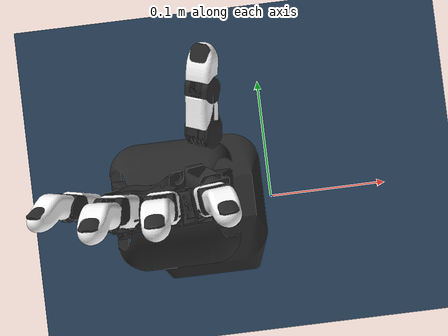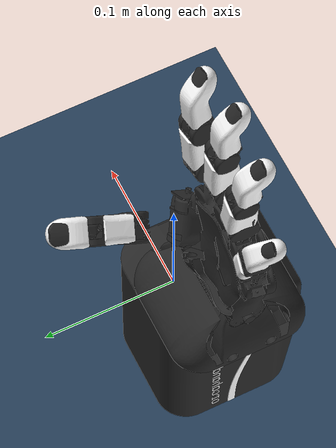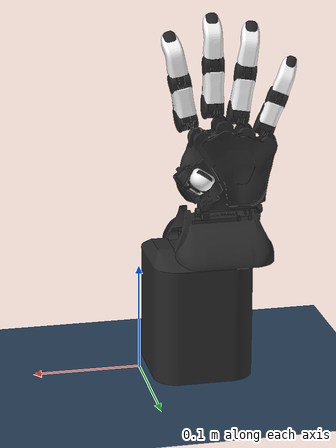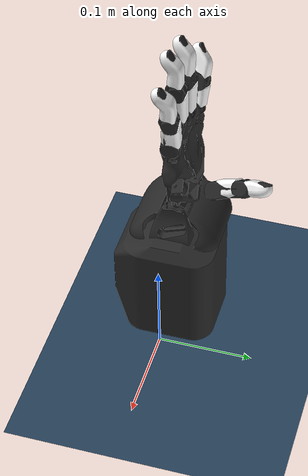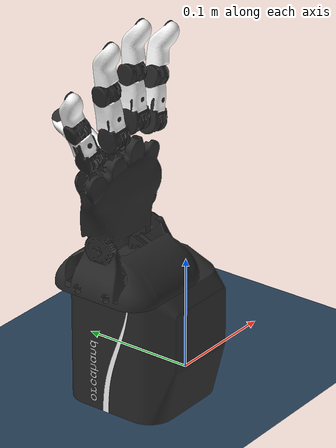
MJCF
<?xml version="1.0" ?>
<mujoco model="ORCA hand left scene">

  <include file="models/assets/scene.xml"/>

  <include file="models/assets/options.xml"/>

  <include file="models/mjcf/orcahand_left.mjcf"/>

  <worldbody>
    <body name="left_mount" pos="-0.06363 0.00332 0.058" euler="1.5708 0 0">
      <include file="models/mjcf/orcahand_left_body.xml"/>
    </body>
  </worldbody>

</mujoco>

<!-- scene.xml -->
<mujoco model="orcahand_v2_scene">

  <!-- Camera placement -->
  <statistic extent="0.3" center="0 0 0.15"/>
  <visual>
    <rgba haze="0.15 0.25 0.35 1"/>
    <quality shadowsize="8192"/>
    <global azimuth="220" elevation="-30"/>
  </visual>

  <!-- Background -->
  <asset>
    <texture type="skybox" builtin="gradient" rgb1="0.3 0.5 0.7" rgb2="0 0 0" width="512" height="3072"/>
    <texture type="2d" name="groundplane" builtin="checker" mark="edge" rgb1="0.2 0.3 0.4" rgb2="0.1 0.2 0.3"
      markrgb="0.8 0.8 0.8" width="300" height="300"/>
    <material name="groundplane" texture="groundplane" texuniform="true" texrepeat="5 5" reflectance="0.2"/>
  </asset>

  <worldbody>
    <!-- Lighting and floor -->
    <light pos="0 0.5 1" dir="0 -0.3 -1" diffuse="0.8 0.8 0.8" specular="0.2 0.2 0.2"/>
    <light pos="0.3 0.5 1.5" dir="0 -0.3 -1" directional="true" diffuse="0.6 0.6 0.6" specular="0.1 0.1 0.1"/>
    <geom name="floor" pos="0 0 0" size="0 0 0.05" type="plane" material="groundplane"/>

  </worldbody>

</mujoco>

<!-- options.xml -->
<mujoco model="orcahand_v2_options">

  <!-- eulerseq "XYZ" corresponds to URDF "rpy" -->
  <compiler angle="radian" eulerseq="XYZ"/>

  <default>
    <mesh scale="0.001 0.001 0.001"/>
    <!-- Visual classes -->
    <default class="visual_base">
      <geom conaffinity="0" condim="1" contype="0" group="2" type="mesh"/>
      <default class="skin">
        <geom material="white"/>
      </default>
      <default class="bone">
        <geom material="black"/>
      </default>
    </default>
    <!-- Collision class -->
    <default class="collision">
      <geom conaffinity="1" condim="3" contype="1" group="1" material="invisible" type="mesh"/>
    </default>
    <!-- Joints -->
    <joint armature="0.001" damping="0.1" frictionloss="0.001" limited="true" margin="0.01" type="hinge"/>
    <position ctrllimited="true" forcelimited="true" forcerange="-1 1" kp="2.0"/>
  </default>

  <asset>
    <!-- Materials -->
    <material name="white" rgba="1 1 1 1" shininess="0.02" specular="0.005"/>
    <material name="black" rgba="0.1569 0.1569 0.1569 1" shininess="0.5" specular="0.1"/>
    <material name="invisible" rgba="1 1 1 0" shininess="0" specular="0"/>
  </asset>

</mujoco>

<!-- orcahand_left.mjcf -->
<mujoco model="orcahand_left">
	<default>
		<geom type="mesh" friction="1 0.005 0.001" condim="3" margin="0.0005" contype="1" conaffinity="1" />
		<joint type="hinge" limited="true" damping="0.1" armature="0.001" margin="0.01" frictionloss="0.001" />
		<position ctrllimited="true" forcelimited="true" forcerange="-1 1" kp="2.0" />
		<mesh scale="0.001 0.001 0.001" />
	</default>
	<asset>
		<mesh name="left_L-T-AP" file="models/assets/left/L-T-AP.stl" />
		<mesh name="left_P-AP" file="models/assets/left/P-AP.stl" />
		<mesh name="left_ForeArmStructure-Model" file="models/assets/left/ForeArmStructure-Model.stl" />
		<mesh name="left_TopTower-Model" file="models/assets/left/TopTower-Model.stl" />
		<mesh name="left_I-AP-L" file="models/assets/left/I-AP-L.stl" />
		<mesh name="left_T-TP-L" file="models/assets/left/T-TP-L.stl" />
		<mesh name="left_L-Carpals" file="models/assets/left/L-Carpals.stl" />
		<mesh name="left_L-Carpals_Skin" file="models/assets/left/L-Carpals_Skin.stl" />
		<mesh name="left_M-AP" file="models/assets/left/M-AP.stl" />
		<mesh name="left_ForeArmStructure-Model_Logo" file="models/assets/left/ForeArmStructure-Model_Logo.stl" />
		<mesh name="left_T-PP_Skin" file="models/assets/left/T-PP_Skin.stl" />
		<mesh name="left_P-IP_IP" file="models/assets/left/P-IP_IP.stl" />
		<mesh name="left_M-PP_PP" file="models/assets/left/M-PP_PP.stl" />
		<mesh name="left_M-PP_Skin" file="models/assets/left/M-PP_Skin.stl" />
		<mesh name="left_T-DP_Skin" file="models/assets/left/T-DP_Skin.stl" />
		<mesh name="left_P-FingerTipAssembly_P-DP-Skin" file="models/assets/left/P-FingerTipAssembly_P-DP-Skin.stl" />
		<mesh name="left_T-PP_PP" file="models/assets/left/T-PP_PP.stl" />
		<mesh name="left_I-IP_IP" file="models/assets/left/I-IP_IP.stl" />
		<mesh name="left_T-DP_T-DP" file="models/assets/left/T-DP_T-DP.stl" />
		<mesh name="left_P-PP_Skin" file="models/assets/left/P-PP_Skin.stl" />
		<mesh name="left_I-PP_PP" file="models/assets/left/I-PP_PP.stl" />
		<mesh name="left_I-FingerTipAssembly_I-DP-Skin" file="models/assets/left/I-FingerTipAssembly_I-DP-Skin.stl" />
		<mesh name="left_P-PP_PP" file="models/assets/left/P-PP_PP.stl" />
		<mesh name="left_I-PP_Skin" file="models/assets/left/I-PP_Skin.stl" />
		<mesh name="left_M-IP_IP" file="models/assets/left/M-IP_IP.stl" />
		<mesh name="left_M-FingerTipAssembly_M-DP-Skin" file="models/assets/left/M-FingerTipAssembly_M-DP-Skin.stl" />
		<mesh name="left_forearm_collision" file="models/assets/left/forearm_collision.stl" />
		<mesh name="left_tower_collision_0" file="models/assets/left/tower_collision_0.stl" />
		<mesh name="left_tower_collision_1" file="models/assets/left/tower_collision_1.stl" />
		<mesh name="left_tower_collision_2" file="models/assets/left/tower_collision_2.stl" />
		<mesh name="left_tower_collision_3" file="models/assets/left/tower_collision_3.stl" />
		<mesh name="left_tower_collision_4" file="models/assets/left/tower_collision_4.stl" />
		<mesh name="left_tower_collision_5" file="models/assets/left/tower_collision_5.stl" />
		<mesh name="left_carpals_collision_0" file="models/assets/left/carpals_collision_0.stl" />
		<mesh name="left_carpals_collision_1" file="models/assets/left/carpals_collision_1.stl" />
		<mesh name="left_carpals_collision_2" file="models/assets/left/carpals_collision_2.stl" />
		<mesh name="left_carpals_collision_3" file="models/assets/left/carpals_collision_3.stl" />
		<mesh name="left_carpals_collision_4" file="models/assets/left/carpals_collision_4.stl" />
		<mesh name="left_carpals_collision_5" file="models/assets/left/carpals_collision_5.stl" />
		<mesh name="left_carpals_collision_6" file="models/assets/left/carpals_collision_6.stl" />
		<mesh name="left_carpals_collision_7" file="models/assets/left/carpals_collision_7.stl" />
		<mesh name="left_pinky_ap_collision" file="models/assets/left/pinky_ap_collision.stl" />
		<mesh name="left_pinky_pp_collision" file="models/assets/left/pinky_pp_collision.stl" />
		<mesh name="left_pinky_dp_collision_0" file="models/assets/left/pinky_dp_collision_0.stl" />
		<mesh name="left_pinky_dp_collision_1" file="models/assets/left/pinky_dp_collision_1.stl" />
		<mesh name="left_pinky_dp_collision_2" file="models/assets/left/pinky_dp_collision_2.stl" />
		<mesh name="left_pinky_dp_collision_3" file="models/assets/left/pinky_dp_collision_3.stl" />
		<mesh name="left_ring_ap_collision" file="models/assets/left/ring_ap_collision.stl" />
		<mesh name="left_ring_pp_collision" file="models/assets/left/ring_pp_collision.stl" />
		<mesh name="left_ring_dp_collision_0" file="models/assets/left/ring_dp_collision_0.stl" />
		<mesh name="left_ring_dp_collision_1" file="models/assets/left/ring_dp_collision_1.stl" />
		<mesh name="left_ring_dp_collision_2" file="models/assets/left/ring_dp_collision_2.stl" />
		<mesh name="left_ring_dp_collision_3" file="models/assets/left/ring_dp_collision_3.stl" />
		<mesh name="left_middle_ap_collision" file="models/assets/left/middle_ap_collision.stl" />
		<mesh name="left_middle_pp_collision" file="models/assets/left/middle_pp_collision.stl" />
		<mesh name="left_middle_dp_collision_0" file="models/assets/left/middle_dp_collision_0.stl" />
		<mesh name="left_middle_dp_collision_1" file="models/assets/left/middle_dp_collision_1.stl" />
		<mesh name="left_middle_dp_collision_2" file="models/assets/left/middle_dp_collision_2.stl" />
		<mesh name="left_middle_dp_collision_3" file="models/assets/left/middle_dp_collision_3.stl" />
		<mesh name="left_index_ap_collision" file="models/assets/left/index_ap_collision.stl" />
		<mesh name="left_index_pp_collision" file="models/assets/left/index_pp_collision.stl" />
		<mesh name="left_index_dp_collision_0" file="models/assets/left/index_dp_collision_0.stl" />
		<mesh name="left_index_dp_collision_1" file="models/assets/left/index_dp_collision_1.stl" />
		<mesh name="left_index_dp_collision_2" file="models/assets/left/index_dp_collision_2.stl" />
		<mesh name="left_index_dp_collision_3" file="models/assets/left/index_dp_collision_3.stl" />
		<mesh name="left_thumb_tp_collision" file="models/assets/left/thumb_tp_collision.stl" />
		<mesh name="left_thumb_ap_collision" file="models/assets/left/thumb_ap_collision.stl" />
		<mesh name="left_thumb_pp_collision" file="models/assets/left/thumb_pp_collision.stl" />
		<mesh name="left_thumb_dp_collision_0" file="models/assets/left/thumb_dp_collision_0.stl" />
		<mesh name="left_thumb_dp_collision_1" file="models/assets/left/thumb_dp_collision_1.stl" />
		<mesh name="left_thumb_dp_collision_2" file="models/assets/left/thumb_dp_collision_2.stl" />
		<mesh name="left_thumb_dp_collision_3" file="models/assets/left/thumb_dp_collision_3.stl" />
	</asset>
	<actuator>
		<position name="left_wrist_actuator" joint="left_wrist" ctrlrange="-1.1344640137963142 0.6108652381980153" />
		<position name="left_pinky_abd_actuator" joint="left_pinky_abd" ctrlrange="-0.5235987755982988 0.5235987755982988" />
		<position name="left_pinky_mcp_actuator" joint="left_pinky_mcp" ctrlrange="-0.4363323129985824 1.7453292519943295" />
		<position name="left_pinky_pip_actuator" joint="left_pinky_pip" ctrlrange="-0.2617993877991494 1.8675022996339325" />
		<position name="left_ring_abd_actuator" joint="left_ring_abd" ctrlrange="-0.47123889803846897 0.47123889803846897" />
		<position name="left_ring_mcp_actuator" joint="left_ring_mcp" ctrlrange="-0.4363323129985824 1.7453292519943295" />
		<position name="left_ring_pip_actuator" joint="left_ring_pip" ctrlrange="-0.2617993877991494 1.8675022996339325" />
		<position name="left_middle_abd_actuator" joint="left_middle_abd" ctrlrange="-0.47123889803846897 0.47123889803846897" />
		<position name="left_middle_mcp_actuator" joint="left_middle_mcp" ctrlrange="-0.4363323129985824 1.7453292519943295" />
		<position name="left_middle_pip_actuator" joint="left_middle_pip" ctrlrange="-0.2617993877991494 1.8675022996339325" />
		<position name="left_index_abd_actuator" joint="left_index_abd" ctrlrange="-0.4363323129985824 0.5235987755982988" />
		<position name="left_index_mcp_actuator" joint="left_index_mcp" ctrlrange="-0.4363323129985824 1.7453292519943295" />
		<position name="left_index_pip_actuator" joint="left_index_pip" ctrlrange="-0.2617993877991494 1.8675022996339325" />
		<position name="left_thumb_cmc_actuator" joint="left_thumb_cmc" ctrlrange="-0.7853981633974483 0.5759586531581288" />
		<position name="left_thumb_abd_actuator" joint="left_thumb_abd" ctrlrange="-0.3141592653589793 0.9599310885968813" />
		<position name="left_thumb_mcp_actuator" joint="left_thumb_mcp" ctrlrange="-0.4363323129985824 1.7453292519943295" />
		<position name="left_thumb_dip_actuator" joint="left_thumb_dip" ctrlrange="-0.2617993877991494 1.8675022996339325" />
	</actuator>
	<contact>
		<exclude body1="left_tower" body2="left_carpals" />
		<exclude body1="left_carpals" body2="left_index_pp" />
		<exclude body1="left_carpals" body2="left_middle_pp" />
		<exclude body1="left_carpals" body2="left_ring_pp" />
		<exclude body1="left_carpals" body2="left_pinky_pp" />
		<exclude body1="left_carpals" body2="left_thumb_ap" />
	</contact>
</mujoco>

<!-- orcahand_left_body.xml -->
<mujoco model="orcahand_left_body">
	<body name="left_tower" quat="1.0 0.0 0.0 0.0">
		<body name="left_ForeArmStructure-Model_e18f2368" pos="0.0 0.0 0.0" quat="1.0 0.0 0.0 0.0">
			<body name="left_TopTower-Model_4a80d30e" pos="-0.010000000000000018 0.05230000000000584 -2.0816681711721685e-17" quat="-0.4999999999999985 0.4999999999999986 -0.5 -0.49999999999999994">
				<body name="left_L-Carpals_719fff8c" pos="-0.0018770780631086439 0.005000000000000008 0.0895000006705525" quat="-0.7071067811865476 -1.7172886266853953e-17 -7.605135346749523e-17 0.7071067811865495">
					<body name="left_T-TP-L_92b8100b" pos="0.031213412275949873 0.01433246945435058 -0.02172481544690435" quat="0.656374345900825 -0.07257037461795694 0.3594909813403495 -0.6592969688281836">
						<body name="left_L-T-AP_58680c44" pos="-0.035999999999999976 1.0408340855860843e-17 -1.2533377113932431e-16" quat="0.8191520442889911 0.5735764363510457 -6.661338147750939e-16 1.609823385706477e-15">
							<body name="left_T-PP_ef067304" pos="3.6356335937636955e-17 -7.738818763564917e-18 -1.3080846264541988e-17" quat="1.4432899320127035e-15 -0.7071067811865464 -9.159339953157541e-16 0.707106781186545">
								<body name="left_T-DP_307db3cc" pos="0.0009999999999999853 -2.2551405187698492e-17 0.03200000000000017" quat="1.0000000000000027 0.0 2.7755575615628914e-17 1.942890293094024e-15">
									<joint name="left_t-pip" pos="6.724022184779712e-17 -4.880775102973274e-17 1.5021079906053094e-16" axis="-8.604228440844963e-16 -0.9999999999999971 -4.440892098500626e-16" range="-0.2617993877991494 1.8675022996339325" ref="0.0" />
									<geom mesh="left_T-DP_T-DP" material="black" pos="0.0 0.0 0.0" quat="1.0 0.0 0.0 0.0" />
									<geom mesh="left_T-DP_Skin" material="white" pos="0.0 0.0 0.0" quat="1.0 0.0 0.0 0.0" contype="0" conaffinity="0" />
								</body>
								<joint name="left_t-mcp" pos="-3.7171156597089945e-17 -5.821788984262281e-17 6.75998716698855e-17" axis="3.1086244689504383e-15 -1.0000000000000049 -2.7755575615628914e-16" range="-0.4363323129985824 1.7453292519943295" ref="0.0" />
								<geom mesh="left_T-PP_Skin" material="white" pos="-1.7763568394002505e-17 -1.7763568394002505e-17 1.7763568394002505e-17" quat="1.0 2.0816681711721685e-17 1.3877787807814457e-17 -1.3877787807814457e-17" contype="0" conaffinity="0" />
								<geom mesh="left_T-PP_PP" material="black" pos="-1.7763568394002505e-17 -1.7763568394002505e-17 1.7763568394002505e-17" quat="1.0 2.0816681711721685e-17 1.3877787807814457e-17 -1.3877787807814457e-17" />
							</body>
							<joint name="left_t-abd" pos="0.028000000000000018 -2.7755575615628914e-17 2.7321894746634712e-17" axis="1.27675647831893e-15 0.3420201433256675 -0.9396926207859057" range="-0.3141592653589793 0.9599310885968813" ref="0.0" />
							<geom mesh="left_L-T-AP" material="black" />
						</body>
						<joint name="left_t-cmc" pos="1.5016200088924236e-17 5.139118297581291e-17 0.0038500000000000643" axis="-2.435551760271437e-15 3.885780586188048e-16 0.9999999999999951" range="-0.7853981633974483 0.5759586531581288" ref="0.0" />
						<geom mesh="left_T-TP-L" material="black" />
					</body>
					<body name="left_I-AP-L_57ce92f7" pos="0.03557227633914042 0.0006806400972512766 0.03835792095624094" quat="-0.47163838811428216 -0.4317797959371625 -0.5666863557305154 0.5196056320963941">
						<body name="left_I-PP_3df4f91d" pos="-0.0004009681508766555 -7.792703114739563e-18 2.9526348813840864e-15" quat="-0.7071067811865466 -2.3314683517128287e-15 0.7071067811865461 2.0539125955565396e-15">
							<body name="left_I-FingerTipAssembly_ed91b18a" pos="0.0014999999999999937 5.637851296924623e-18 0.03700000000000012" quat="1.0000000000000022 1.5959455978986625e-16 -1.3877787807814457e-17 3.3306690738754696e-15">
								<joint name="left_i-pip" pos="4.938281810987171e-18 -1.7671634284259278e-17 -5.964481871782928e-17" axis="-3.552713678800501e-15 -0.9999999999999964 2.706168622523819e-16" range="-0.2617993877991494 1.8675022996339325" ref="0.0" />
								<geom mesh="left_I-FingerTipAssembly_I-DP-Skin" material="white" pos="0.0 0.0 0.0" quat="1.0 0.0 0.0 0.0" contype="0" conaffinity="0" />
								<geom mesh="left_I-IP_IP" material="black" pos="0.0 0.0 0.0" quat="1.0 0.0 0.0 0.0" />
							</body>
							<joint name="left_i-mcp" pos="-3.9536780632609477e-19 -8.231990831039655e-18 1.396150100408705e-16" axis="5.995204332975845e-15 -1.0000000000000038 2.0816681711721685e-17" range="-0.4363323129985824 1.7453292519943295" ref="0.0" />
							<geom mesh="left_I-PP_Skin" material="white" pos="7.28583859910259e-19 -2.220446049250313e-18 3.552713678800501e-17" quat="1.0 -6.938893903907228e-18 -1.3010426069826053e-18 5.637851296924623e-18" contype="0" conaffinity="0" />
							<geom mesh="left_I-PP_PP" material="black" pos="7.28583859910259e-19 -2.220446049250313e-18 3.552713678800501e-17" quat="1.0 -6.938893903907228e-18 -1.3010426069826053e-18 5.637851296924623e-18" />
						</body>
						<joint name="left_i-abd" pos="0.018750000000000086 -1.8214596497756474e-17 0.000999999999999993" axis="-0.03128510081059521 0.16814409541512249 -0.9852658553123104" range="-0.436332313 0.5235987756" ref="-0.0" />
						<geom mesh="left_I-AP-L" material="black" />
					</body>
					<body name="left_M-AP_e04a96f2" pos="0.010758073950624194 -0.0011463260089169375 0.0482518232227061" quat="-0.49932759692114675 -0.4993275969211465 -0.50067150004065 0.5006715000406502">
						<body name="left_M-PP_08efa608" pos="-0.0006169679429056389 -5.936006894358137e-18 4.45032465740125e-15" quat="-0.7071067811865465 -1.942890293094024e-15 0.7071067811865461 2.1094237467877974e-15">
							<body name="left_M-FingerTipAssembly_34afb748" pos="0.002000000000000013 -3.2526065174565133e-18 0.040000000000000056" quat="1.0000000000000024 1.1655173354219173e-16 4.7813315806610746e-17 3.1086244689504383e-15">
								<joint name="left_m-pip" pos="-1.474514954580278e-17 -2.2103714476980423e-17 -1.665934659025852e-16" axis="-3.2751579226442118e-15 -0.9999999999999984 7.968885967768458e-17" range="-0.2617993877991494 1.8675022996339325" ref="0.0" />
								<geom mesh="left_M-FingerTipAssembly_M-DP-Skin" material="white" pos="0.0 0.0 0.0" quat="1.0 0.0 0.0 0.0" contype="0" conaffinity="0" />
								<geom mesh="left_M-IP_IP" material="black" pos="0.0 0.0 0.0" quat="1.0 0.0 0.0 0.0" />
							</body>
							<joint name="left_m-mcp" pos="-3.0357660829593107e-18 -1.7841522994185985e-17 -1.3882633405336455e-16" axis="5.773159728050814e-15 -1.000000000000006 -1.476683358925257e-16" range="-0.4363323129985824 1.7453292519943295" ref="0.0" />
							<geom mesh="left_M-PP_Skin" material="white" pos="0.0 2.220446049250313e-18 0.0" quat="1.0 0.0 3.0814879110195774e-33 -2.10335624051391e-31" contype="0" conaffinity="0" />
							<geom mesh="left_M-PP_PP" material="black" pos="0.0 2.220446049250313e-18 0.0" quat="1.0 0.0 3.0814879110195774e-33 -2.10335624051391e-31" />
						</body>
						<joint name="left_m-abd" pos="0.019249999999999934 -2.6020852139652106e-17 0.0009999999999999913" axis="-6.106226635438361e-16 1.6653345369377348e-16 -0.9999999999999963" range="-0.47123889803846897 0.47123889803846897" ref="-0.0" />
						<geom mesh="left_M-AP" material="black" />
					</body>
					<body name="left_M-AP_6ec59111" pos="-0.013004413961368904 -0.00010153680172964337 0.04085088188107136" quat="-0.5143887032276867 -0.554717937998398 -0.4385065669551668 0.4851847709808502">
						<body name="left_M-PP_8660a1eb" pos="-0.0006169679429056013 1.8973538018496328e-19 4.444768121267262e-15" quat="-0.7071067811865466 -1.9984014443252818e-15 0.7071067811865461 2.0539125955565396e-15">
							<body name="left_M-FingerTipAssembly_424a8e75" pos="0.002000000000000003 -2.0274580625478933e-17 0.040000000000000105" quat="1.0000000000000022 1.1102230246251565e-16 4.85722573273506e-17 3.2751579226442118e-15">
								<joint name="left_r-pip" pos="3.0277404230089883e-19 3.103847689461043e-17 -4.554030083181501e-18" axis="-3.4416913763379853e-15 -0.9999999999999967 1.5265566588595902e-16" range="-0.2617993877991494 1.8675022996339325" ref="0.0" />
								<geom mesh="left_M-FingerTipAssembly_M-DP-Skin" material="white" pos="0.0 0.0 0.0" quat="1.0 0.0 0.0 0.0" contype="0" conaffinity="0" />
								<geom mesh="left_M-IP_IP" material="black" pos="0.0 0.0 0.0" quat="1.0 0.0 0.0 0.0" />
							</body>
							<joint name="left_r-mcp" pos="7.77890138008401e-19 5.960928375611919e-19 -1.4035114566359072e-16" axis="6.050715484207103e-15 -1.0000000000000036 -5.551115123125783e-17" range="-0.4363323129985824 1.7453292519943295" ref="0.0" />
							<geom mesh="left_M-PP_Skin" material="white" pos="0.0 -4.440892098500626e-18 -3.552713678800501e-17" quat="1.0 6.938893903907228e-18 8.076402051607204e-19 -4.287881788168087e-18" contype="0" conaffinity="0" />
							<geom mesh="left_M-PP_PP" material="black" pos="0.0 -4.440892098500626e-18 -3.552713678800501e-17" quat="1.0 6.938893903907228e-18 8.076402051607204e-19 -4.287881788168087e-18" />
						</body>
						<joint name="left_r-abd" pos="0.019249999999999958 -6.938893903907228e-18 0.0009999999999999905" axis="-0.025208135220825684 -0.17180872948058878 -0.9848077530122064" range="-0.47123889803846897 0.47123889803846897" ref="-0.0" />
						<geom mesh="left_M-AP" material="black" />
					</body>
					<body name="left_P-AP_f5e42b61" pos="-0.036667924695998784 0.0050008241469496235 0.02910175144072915" quat="-0.5461467691399455 -0.613860158565644 -0.34021487235312026 0.45733275950178043">
						<body name="left_P-PP_1d411b9b" pos="3.833251243929697e-17 2.2445923627098072e-17 -3.593641296366732e-18" quat="-0.7071067811865466 -1.7763568394002505e-15 0.7071067811865459 1.7763568394002505e-15">
							<body name="left_P-FingerTipAssembly_cd219176" pos="0.000999999999999991 -7.806255641895632e-18 0.03100000000000007" quat="1.0000000000000022 6.938893903907228e-17 0.0 2.942091015256665e-15">
								<joint name="left_p-pip" pos="5.74536201685304e-18 -2.544098244259518e-17 -2.2826085315357464e-16" axis="-3.164135620181696e-15 -0.9999999999999976 1.1102230246251565e-16" range="-0.2617993877991494 1.8675022996339325" ref="0.0" />
								<geom mesh="left_P-FingerTipAssembly_P-DP-Skin" material="white" pos="0.0 0.0 0.0" quat="1.0 0.0 0.0 0.0" contype="0" conaffinity="0" />
								<geom mesh="left_P-IP_IP" material="black" pos="0.0 0.0 0.0" quat="1.0 0.0 0.0 0.0" />
							</body>
							<joint name="left_p-mcp" pos="-1.2505891133485139e-18 -2.0021543922218088e-17 -5.1761470187350585e-17" axis="5.495603971894525e-15 -1.0000000000000044 2.7755575615628914e-17" range="-0.4363323129985824 1.7453292519943295" ref="0.0" />
							<geom mesh="left_P-PP_Skin" material="white" pos="0.0 0.0 0.0" quat="1.0 0.0 1.734723475976807e-18 -8.673617379884035e-19" contype="0" conaffinity="0" />
							<geom mesh="left_P-PP_PP" material="black" pos="0.0 0.0 0.0" quat="1.0 0.0 1.734723475976807e-18 -8.673617379884035e-19" />
						</body>
						<joint name="left_p-abd" pos="0.01774999999999991 6.201636426617085e-17 0.0009999999999999866" axis="-0.13297994090837154 -0.34829476172536833 -0.927904679517606" range="-0.5235987755982988 0.5235987755982988" ref="-0.0" />
						<geom mesh="left_P-AP" material="black" />
					</body>
					<joint name="left_wrist" pos="0.004999999999999994 0.001877078063108656 -0.04950000067055224" axis="-0.9999999999999971 1.767581259681953e-16 -1.318389841742366e-16" range="-1.1344640137963142 0.6108652381980153" ref="0.0" />
					<geom mesh="left_L-Carpals" material="black" />
				</body>
				<geom mesh="left_TopTower-Model" material="black" />
			</body>
			<geom mesh="left_ForeArmStructure-Model_Logo" material="white" pos="0.0 0.0 0.0" quat="1.0 0.0 0.0 0.0" contype="0" conaffinity="0" />
			<geom mesh="left_ForeArmStructure-Model" material="black" />
		</body>
	</body>
</mujoco>
